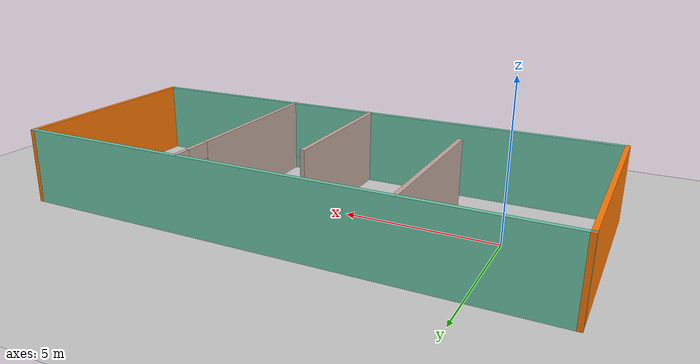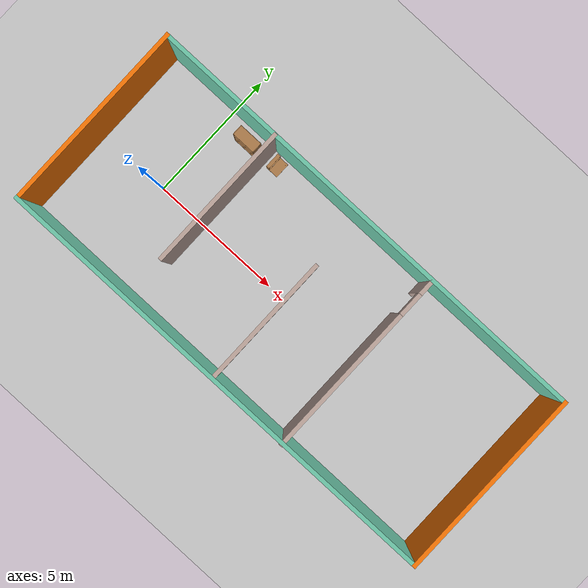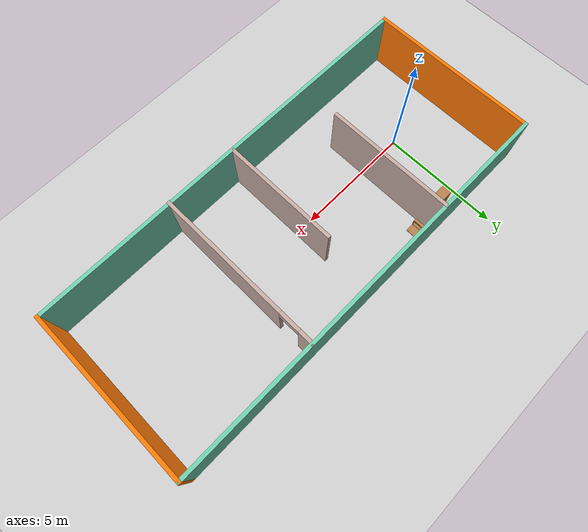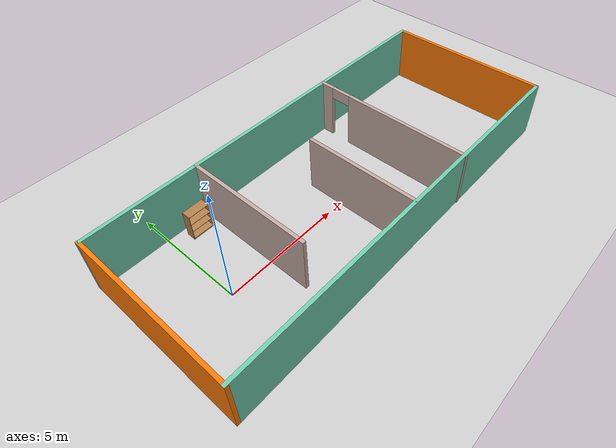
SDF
<sdf version="1.6">
 <world name="default">
  <model name="ground_plane">
   <static>1</static>
   <link name="link">
    <collision name="collision">
     <geometry><plane><normal>0 0 1</normal><size>100 100</size></plane></geometry>
     <surface>
      <contact><collide_bitmask>65535</collide_bitmask></contact>
      <friction><ode><mu>100</mu><mu2>50</mu2></ode></friction>
     </surface>
    </collision>
    <visual name="visual">
     <cast_shadows>0</cast_shadows>
     <geometry><plane><normal>0 0 1</normal><size>100 100</size></plane></geometry>
     <material>
      <script><uri>file://media/materials/scripts/gazebo.material</uri><name>Gazebo/Grey</name></script>
     </material>
    </visual>
   </link>
  </model>
  <model name="simplest_world">
   <pose>5.9073 0.146302 0 0 -0 0</pose>
   <link name="Wall_10">
    <collision name="Wall_10_Collision">
     <geometry><box><size>7.25 0.15 2.5</size></box></geometry>
     <pose>0 0 1.25 0 -0 0</pose>
    </collision>
    <visual name="Wall_10_Visual">
     <pose>0 0 1.25 0 -0 0</pose>
     <geometry><box><size>7.25 0.15 2.5</size></box></geometry>
     <material>
      <script><uri>file://media/materials/scripts/gazebo.material</uri><name>Gazebo/Grey</name></script>
      <ambient>0.996078 0.47451 0.0196078 1</ambient>
     </material>
     <meta><layer>0</layer></meta>
    </visual>
    <pose>8.675 0.012311 0 0 0 -1.5708</pose>
   </link>
   <link name="Wall_11">
    <collision name="Wall_11_Collision">
     <geometry><box><size>17.5 0.15 2.5</size></box></geometry>
     <pose>0 0 1.25 0 -0 0</pose>
    </collision>
    <visual name="Wall_11_Visual">
     <pose>0 0 1.25 0 -0 0</pose>
     <geometry><box><size>17.5 0.15 2.5</size></box></geometry>
     <material>
      <script><uri>file://media/materials/scripts/gazebo.material</uri><name>Gazebo/Grey</name></script>
      <ambient>0.435294 0.796078 0.67451 1</ambient>
     </material>
     <meta><layer>0</layer></meta>
    </visual>
    <pose>0 -3.53769 0 0 -0 3.14159</pose>
   </link>
   <link name="Wall_13">
    <collision name="Wall_13_Collision">
     <geometry><box><size>5.5 0.15 2.5</size></box></geometry>
     <pose>0 0 1.25 0 -0 0</pose>
    </collision>
    <visual name="Wall_13_Visual">
     <pose>0 0 1.25 0 -0 0</pose>
     <geometry><box><size>5.5 0.15 2.5</size></box></geometry>
     <material>
      <script><uri>file://media/materials/scripts/gazebo.material</uri><name>Gazebo/Grey</name></script>
      <ambient>0.760784 0.662745 0.627451 1</ambient>
     </material>
     <meta><layer>0</layer></meta>
    </visual>
    <pose>-3.97198 0.862689 0 0 0 -1.5708</pose>
   </link>
   <link name="Wall_15">
    <collision name="Wall_15_Collision">
     <geometry><box><size>5 0.15 2.5</size></box></geometry>
     <pose>0 0 1.25 0 -0 0</pose>
    </collision>
    <visual name="Wall_15_Visual">
     <pose>0 0 1.25 0 -0 0</pose>
     <geometry><box><size>5 0.15 2.5</size></box></geometry>
     <material>
      <script><uri>file://media/materials/scripts/gazebo.material</uri><name>Gazebo/Grey</name></script>
      <ambient>0.760784 0.662745 0.627451 1</ambient>
     </material>
     <meta><layer>0</layer></meta>
    </visual>
    <pose>-0.157024 -1.07394 0 0 0 -1.5708</pose>
   </link>
   <link name="Wall_19">
    <pose>2.91356 -0.012311 0 0 0 -1.5708</pose>
    <visual name="Wall_19_Visual_0">
     <pose>-3.30074 0 1.25 0 -0 0</pose>
     <geometry><box><size>0.648526 0.15 2.5</size></box></geometry>
     <material>
      <script><uri>file://media/materials/scripts/gazebo.material</uri><name>Gazebo/Grey</name></script>
      <ambient>0.760784 0.662745 0.627451 1</ambient>
     </material>
     <meta><layer>0</layer></meta>
    </visual>
    <collision name="Wall_19_Collision_0">
     <geometry><box><size>0.648526 0.15 2.5</size></box></geometry>
     <pose>-3.30074 0 1.25 0 -0 0</pose>
    </collision>
    <visual name="Wall_19_Visual_1">
     <pose>0.774263 0 1.25 0 -0 0</pose>
     <geometry><box><size>5.70147 0.15 2.5</size></box></geometry>
     <material>
      <script><uri>file://media/materials/scripts/gazebo.material</uri><name>Gazebo/Grey</name></script>
      <ambient>0.760784 0.662745 0.627451 1</ambient>
     </material>
     <meta><layer>0</layer></meta>
    </visual>
    <collision name="Wall_19_Collision_1">
     <geometry><box><size>5.70147 0.15 2.5</size></box></geometry>
     <pose>0.774263 0 1.25 0 -0 0</pose>
    </collision>
    <visual name="Wall_19_Visual_2">
     <pose>-2.52647 0 2.25 0 -0 0</pose>
     <geometry><box><size>0.9 0.15 0.5</size></box></geometry>
     <material>
      <script><uri>file://media/materials/scripts/gazebo.material</uri><name>Gazebo/Grey</name></script>
      <ambient>0.760784 0.662745 0.627451 1</ambient>
     </material>
     <meta><layer>0</layer></meta>
    </visual>
    <collision name="Wall_19_Collision_2">
     <geometry><box><size>0.9 0.15 0.5</size></box></geometry>
     <pose>-2.52647 0 2.25 0 -0 0</pose>
    </collision>
   </link>
   <link name="Wall_4">
    <collision name="Wall_4_Collision">
     <geometry><box><size>7.25 0.15 2.5</size></box></geometry>
     <pose>0 0 1.25 0 -0 0</pose>
    </collision>
    <visual name="Wall_4_Visual">
     <pose>0 0 1.25 0 -0 0</pose>
     <geometry><box><size>7.25 0.15 2.5</size></box></geometry>
     <material>
      <script><uri>file://media/materials/scripts/gazebo.material</uri><name>Gazebo/Grey</name></script>
      <ambient>0.996078 0.47451 0.0196078 1</ambient>
     </material>
     <meta><layer>0</layer></meta>
    </visual>
    <pose>-8.675 0.012311 0 0 0 -1.5708</pose>
   </link>
   <link name="Wall_9">
    <collision name="Wall_9_Collision">
     <geometry><box><size>17.5 0.15 2.5</size></box></geometry>
     <pose>0 0 1.25 0 -0 0</pose>
    </collision>
    <visual name="Wall_9_Visual">
     <pose>0 0 1.25 0 -0 0</pose>
     <geometry><box><size>17.5 0.15 2.5</size></box></geometry>
     <material>
      <script><uri>file://media/materials/scripts/gazebo.material</uri><name>Gazebo/Grey</name></script>
      <ambient>0.435294 0.796078 0.67451 1</ambient>
     </material>
     <meta><layer>0</layer></meta>
    </visual>
    <pose>0 3.56231 0 0 -0 0</pose>
   </link>
   <static>1</static>
  </model>
  <model name="bookshelf">
   <static>1</static>
   <link name="link">
    <inertial><mass>1</mass></inertial>
    <collision name="back">
     <pose>0 0.005 0.6 0 -0 0</pose>
     <geometry><box><size>0.9 0.01 1.2</size></box></geometry>
    </collision>
    <visual name="visual1">
     <pose>0 0.005 0.6 0 -0 0</pose>
     <geometry><box><size>0.9 0.01 1.2</size></box></geometry>
     <material>
      <script><uri>file://media/materials/scripts/gazebo.material</uri><name>Gazebo/Wood</name></script>
     </material>
    </visual>
    <collision name="left_side">
     <pose>0.45 -0.195 0.6 0 -0 0</pose>
     <geometry><box><size>0.02 0.4 1.2</size></box></geometry>
    </collision>
    <visual name="visual2">
     <pose>0.45 -0.195 0.6 0 -0 0</pose>
     <geometry><box><size>0.02 0.4 1.2</size></box></geometry>
     <material>
      <script><uri>file://media/materials/scripts/gazebo.material</uri><name>Gazebo/Wood</name></script>
     </material>
    </visual>
    <collision name="right_side">
     <pose>-0.45 -0.195 0.6 0 -0 0</pose>
     <geometry><box><size>0.02 0.4 1.2</size></box></geometry>
    </collision>
    <visual name="visual3">
     <pose>-0.45 -0.195 0.6 0 -0 0</pose>
     <geometry><box><size>0.02 0.4 1.2</size></box></geometry>
     <material>
      <script><uri>file://media/materials/scripts/gazebo.material</uri><name>Gazebo/Wood</name></script>
     </material>
    </visual>
    <collision name="bottom">
     <pose>0 -0.195 0.03 0 -0 0</pose>
     <geometry><box><size>0.88 0.4 0.06</size></box></geometry>
    </collision>
    <visual name="visual4">
     <pose>0 -0.195 0.03 0 -0 0</pose>
     <geometry><box><size>0.88 0.4 0.06</size></box></geometry>
     <material>
      <script><uri>file://media/materials/scripts/gazebo.material</uri><name>Gazebo/Wood</name></script>
     </material>
    </visual>
    <collision name="top">
     <pose>0 -0.195 1.19 0 -0 0</pose>
     <geometry><box><size>0.88 0.4 0.02</size></box></geometry>
    </collision>
    <visual name="visual5">
     <pose>0 -0.195 1.19 0 -0 0</pose>
     <geometry><box><size>0.88 0.4 0.02</size></box></geometry>
     <material>
      <script><uri>file://media/materials/scripts/gazebo.material</uri><name>Gazebo/Wood</name></script>
     </material>
    </visual>
    <collision name="low_shelf">
     <pose>0 -0.195 0.43 0 -0 0</pose>
     <geometry><box><size>0.88 0.4 0.02</size></box></geometry>
    </collision>
    <visual name="visual6">
     <pose>0 -0.195 0.43 0 -0 0</pose>
     <geometry><box><size>0.88 0.4 0.02</size></box></geometry>
     <material>
      <script><uri>file://media/materials/scripts/gazebo.material</uri><name>Gazebo/Wood</name></script>
     </material>
    </visual>
    <collision name="high_shelf">
     <pose>0 -0.195 0.8 0 -0 0</pose>
     <geometry><box><size>0.88 0.4 0.02</size></box></geometry>
    </collision>
    <visual name="visual7">
     <pose>0 -0.195 0.8 0 -0 0</pose>
     <geometry><box><size>0.88 0.4 0.02</size></box></geometry>
     <material>
      <script><uri>file://media/materials/scripts/gazebo.material</uri><name>Gazebo/Wood</name></script>
     </material>
    </visual>
   </link>
   <pose>1.15462 3.33201 0 0 -0 0</pose>
  </model>
  <model name="wooden_case_wooden_peg">
   <link name="wooden_case::base">
    <pose>0 0 0.024 0 -0 0</pose>
    <inertial>
     <pose>-0.022184 0 0.171592 0 -0 0</pose>
     <mass>3.96264</mass>
     <inertia>
      <ixx>0.213536</ixx>
      <ixy>0</ixy>
      <ixz>0.000779377</ixz>
      <iyy>0.0708943</iyy>
      <iyz>0</iyz>
      <izz>0.154604</izz>
     </inertia>
    </inertial>
    <collision name="collision_back">
     <pose>-0.053975 0 0.1778 0 -0 0</pose>
     <geometry><box><size>0.01905 0.5461 0.3175</size></box></geometry>
     <surface>
      <contact>
       <poissons_ratio>0.347</poissons_ratio>
       <elastic_modulus>8.8e+09</elastic_modulus>
       <ode><kp>100000</kp><kd>100</kd><max_vel>100</max_vel><min_depth>0.001</min_depth></ode>
      </contact>
      <friction>
       <torsional>
        <coefficient>1</coefficient>
        <use_patch_radius>0</use_patch_radius>
        <surface_radius>0.01</surface_radius>
       </torsional>
      </friction>
     </surface>
    </collision>
    <visual name="visual_back">
     <pose>-0.053975 0 0.1778 0 -0 0</pose>
     <geometry><box><size>0.01905 0.5461 0.3175</size></box></geometry>
     <material>
      <script><uri>file://media/materials/scripts/gazebo.material</uri><name>Gazebo/Wood</name></script>
     </material>
    </visual>
    <collision name="collision_bottom">
     <pose>0 0 0.009525 0 -0 0</pose>
     <geometry><box><size>0.127 0.5842 0.01905</size></box></geometry>
     <surface>
      <contact>
       <poissons_ratio>0.347</poissons_ratio>
       <elastic_modulus>8.8e+09</elastic_modulus>
       <ode><kp>100000</kp><kd>100</kd><max_vel>100</max_vel><min_depth>0.001</min_depth></ode>
      </contact>
      <friction>
       <torsional>
        <coefficient>1</coefficient>
        <use_patch_radius>0</use_patch_radius>
        <surface_radius>0.01</surface_radius>
       </torsional>
      </friction>
     </surface>
    </collision>
    <visual name="visual_bottom">
     <pose>0 0 0.009525 0 -0 0</pose>
     <geometry><box><size>0.127 0.5842 0.01905</size></box></geometry>
     <material>
      <script><uri>file://media/materials/scripts/gazebo.material</uri><name>Gazebo/Wood</name></script>
     </material>
    </visual>
    <collision name="collision_top">
     <pose>0 0 0.346075 0 -0 0</pose>
     <geometry><box><size>0.127 0.5842 0.01905</size></box></geometry>
     <surface>
      <contact>
       <poissons_ratio>0.347</poissons_ratio>
       <elastic_modulus>8.8e+09</elastic_modulus>
       <ode><kp>100000</kp><kd>100</kd><max_vel>100</max_vel><min_depth>0.001</min_depth></ode>
      </contact>
      <friction>
       <torsional>
        <coefficient>1</coefficient>
        <use_patch_radius>0</use_patch_radius>
        <surface_radius>0.01</surface_radius>
       </torsional>
      </friction>
     </surface>
    </collision>
    <visual name="visual_top">
     <pose>0 0 0.346075 0 -0 0</pose>
     <geometry><box><size>0.127 0.5842 0.01905</size></box></geometry>
     <material>
      <script><uri>file://media/materials/scripts/gazebo.material</uri><name>Gazebo/Wood</name></script>
     </material>
    </visual>
    <collision name="collision_left">
     <pose>0 -0.282575 0.1778 0 -0 0</pose>
     <geometry><box><size>0.127 0.01905 0.3175</size></box></geometry>
     <surface>
      <contact>
       <poissons_ratio>0.347</poissons_ratio>
       <elastic_modulus>8.8e+09</elastic_modulus>
       <ode><kp>100000</kp><kd>100</kd><max_vel>100</max_vel><min_depth>0.001</min_depth></ode>
      </contact>
      <friction>
       <torsional>
        <coefficient>1</coefficient>
        <use_patch_radius>0</use_patch_radius>
        <surface_radius>0.01</surface_radius>
       </torsional>
      </friction>
     </surface>
    </collision>
    <visual name="visual_left">
     <pose>0 -0.282575 0.1778 0 -0 0</pose>
     <geometry><box><size>0.127 0.01905 0.3175</size></box></geometry>
     <material>
      <script><uri>file://media/materials/scripts/gazebo.material</uri><name>Gazebo/Wood</name></script>
     </material>
    </visual>
    <collision name="collision_right">
     <pose>0 0.282575 0.1778 0 -0 0</pose>
     <geometry><box><size>0.127 0.01905 0.3175</size></box></geometry>
     <surface>
      <contact>
       <poissons_ratio>0.347</poissons_ratio>
       <elastic_modulus>8.8e+09</elastic_modulus>
       <ode><kp>100000</kp><kd>100</kd><max_vel>100</max_vel><min_depth>0.001</min_depth></ode>
      </contact>
      <friction>
       <torsional>
        <coefficient>1</coefficient>
        <use_patch_radius>0</use_patch_radius>
        <surface_radius>0.01</surface_radius>
       </torsional>
      </friction>
     </surface>
    </collision>
    <visual name="visual_right">
     <pose>0 0.282575 0.1778 0 -0 0</pose>
     <geometry><box><size>0.127 0.01905 0.3175</size></box></geometry>
     <material>
      <script><uri>file://media/materials/scripts/gazebo.material</uri><name>Gazebo/Wood</name></script>
     </material>
    </visual>
    <collision name="collision_block_left">
     <pose>0.0095 -0.2151 -0.012 0 -0 0</pose>
     <geometry><box><size>0.108 0.05 0.024</size></box></geometry>
     <surface>
      <contact>
       <poissons_ratio>0.347</poissons_ratio>
       <elastic_modulus>8.8e+09</elastic_modulus>
       <ode><kp>100000</kp><kd>100</kd><max_vel>100</max_vel><min_depth>0.001</min_depth></ode>
      </contact>
      <friction>
       <torsional>
        <coefficient>1</coefficient>
        <use_patch_radius>0</use_patch_radius>
        <surface_radius>0.01</surface_radius>
       </torsional>
      </friction>
     </surface>
    </collision>
    <visual name="visual_block_left">
     <pose>0.0095 -0.2151 -0.012 0 -0 0</pose>
     <geometry><box><size>0.108 0.05 0.024</size></box></geometry>
     <material>
      <script><uri>file://media/materials/scripts/gazebo.material</uri><name>Gazebo/Wood</name></script>
     </material>
    </visual>
    <collision name="collision_block_right">
     <pose>0.0095 0.2151 -0.012 0 -0 0</pose>
     <geometry><box><size>0.108 0.05 0.024</size></box></geometry>
     <surface>
      <contact>
       <poissons_ratio>0.347</poissons_ratio>
       <elastic_modulus>8.8e+09</elastic_modulus>
       <ode><kp>100000</kp><kd>100</kd><max_vel>100</max_vel><min_depth>0.001</min_depth></ode>
      </contact>
      <friction>
       <torsional>
        <coefficient>1</coefficient>
        <use_patch_radius>0</use_patch_radius>
        <surface_radius>0.01</surface_radius>
       </torsional>
      </friction>
     </surface>
    </collision>
    <visual name="visual_block_right">
     <pose>0.0095 0.2151 -0.012 0 -0 0</pose>
     <geometry><box><size>0.108 0.05 0.024</size></box></geometry>
     <material>
      <script><uri>file://media/materials/scripts/gazebo.material</uri><name>Gazebo/Wood</name></script>
     </material>
    </visual>
   </link>
   <link name="wooden_case::lid">
    <pose>0.243775 0 0.009525 0 -0 0</pose>
    <inertial>
     <mass>1.97874</mass>
     <inertia>
      <ixx>0.0563367</ixx>
      <ixy>0</ixy>
      <ixz>0</ixz>
      <iyy>0.020911</iyy>
      <iyz>0</iyz>
      <izz>0.0771281</izz>
     </inertia>
    </inertial>
    <collision name="collision">
     <geometry><box><size>0.3556 0.5842 0.01905</size></box></geometry>
     <surface>
      <contact>
       <poissons_ratio>0.347</poissons_ratio>
       <elastic_modulus>8.8e+09</elastic_modulus>
       <ode><kp>100000</kp><kd>100</kd><max_vel>100</max_vel><min_depth>0.001</min_depth></ode>
      </contact>
      <friction>
       <torsional>
        <coefficient>1</coefficient>
        <use_patch_radius>0</use_patch_radius>
        <surface_radius>0.01</surface_radius>
       </torsional>
      </friction>
     </surface>
    </collision>
    <visual name="visual">
     <geometry><box><size>0.3556 0.5842 0.01905</size></box></geometry>
     <material>
      <script><uri>file://media/materials/scripts/gazebo.material</uri><name>Gazebo/Wood</name></script>
     </material>
    </visual>
    <visual name="tee_nut_1">
     <pose>0.122 -0.216 0 0 -0 0</pose>
     <geometry><cylinder><radius>0.00635</radius><length>0.0192405</length></cylinder></geometry>
     <material>
      <script><uri>file://media/materials/scripts/gazebo.material</uri><name>Gazebo/Grey</name></script>
     </material>
    </visual>
    <visual name="tee_nut_2">
     <pose>0.122 -0.088 0 0 -0 0</pose>
     <geometry><cylinder><radius>0.00635</radius><length>0.0192405</length></cylinder></geometry>
     <material>
      <script><uri>file://media/materials/scripts/gazebo.material</uri><name>Gazebo/Grey</name></script>
     </material>
    </visual>
    <visual name="tee_nut_3">
     <pose>0.122 0.088 0 0 -0 0</pose>
     <geometry><cylinder><radius>0.00635</radius><length>0.0192405</length></cylinder></geometry>
     <material>
      <script><uri>file://media/materials/scripts/gazebo.material</uri><name>Gazebo/Grey</name></script>
     </material>
    </visual>
    <visual name="tee_nut_4">
     <pose>0.122 0.216 0 0 -0 0</pose>
     <geometry><cylinder><radius>0.00635</radius><length>0.0192405</length></cylinder></geometry>
     <material>
      <script><uri>file://media/materials/scripts/gazebo.material</uri><name>Gazebo/Grey</name></script>
     </material>
    </visual>
   </link>
   <joint name="wooden_case::lid_hinge" type="revolute">
    <pose>-0.1778 0 0.01905 0 -0 0</pose>
    <parent>wooden_case::base</parent>
    <child>wooden_case::lid</child>
    <axis>
     <xyz>0 1 0</xyz>
     <limit><upper>0.523599</upper><lower>-1.5708</lower></limit>
     <use_parent_model_frame>0</use_parent_model_frame>
     <dynamics><spring_reference>0</spring_reference><spring_stiffness>0</spring_stiffness></dynamics>
    </axis>
   </joint>
   <link name="peg::link">
    <pose>0.365774 0.216 0.05905 0 -0 0</pose>
    <inertial>
     <mass>0.0175</mass>
     <inertia>
      <ixx>9.74923e-06</ixx>
      <ixy>0</ixy>
      <ixz>0</ixz>
      <iyy>9.74923e-06</iyy>
      <iyz>0</iyz>
      <izz>8.31797e-07</izz>
     </inertia>
    </inertial>
    <collision name="collision">
     <geometry><cylinder><radius>0.00975</radius><length>0.08</length></cylinder></geometry>
     <surface>
      <contact>
       <poissons_ratio>0.347</poissons_ratio>
       <elastic_modulus>8.8e+09</elastic_modulus>
       <ode><kp>100000</kp><kd>100</kd><max_vel>100</max_vel><min_depth>0.001</min_depth></ode>
      </contact>
      <friction>
       <torsional>
        <coefficient>1</coefficient>
        <use_patch_radius>0</use_patch_radius>
        <surface_radius>0.01</surface_radius>
       </torsional>
      </friction>
     </surface>
    </collision>
    <visual name="visual">
     <geometry><cylinder><radius>0.00975</radius><length>0.08</length></cylinder></geometry>
     <material>
      <script><uri>file://media/materials/scripts/gazebo.material</uri><name>Gazebo/Wood</name></script>
     </material>
    </visual>
   </link>
   <joint name="case_peg" type="revolute">
    <child>peg::link</child>
    <parent>wooden_case::lid</parent>
    <axis>
     <xyz>0 0 1</xyz>
     <limit><upper>0</upper><lower>0</lower></limit>
     <use_parent_model_frame>0</use_parent_model_frame>
     <dynamics><spring_reference>0</spring_reference><spring_stiffness>0</spring_stiffness></dynamics>
    </axis>
   </joint>
   <pose>2.20958 3.26826 -0.001057 -1e-06 -0.000429 0</pose>
  </model>
 </world>
</sdf>
